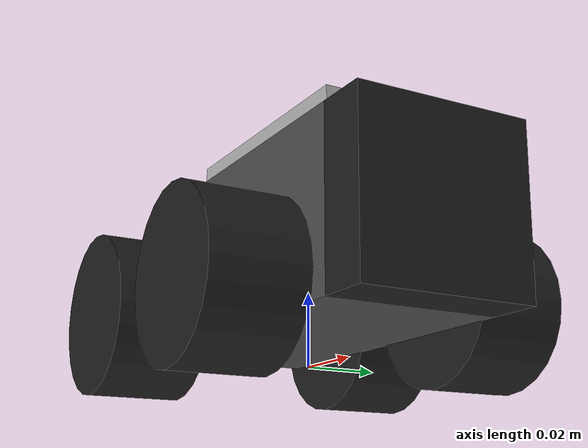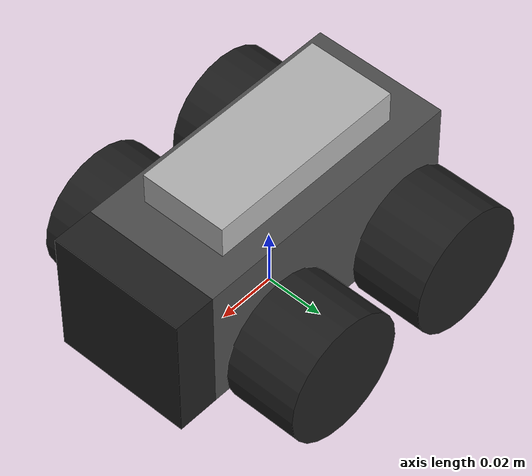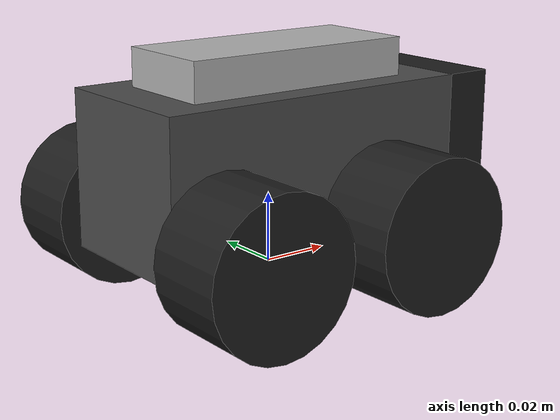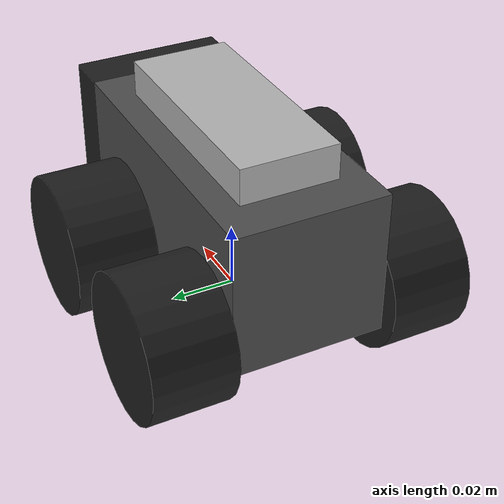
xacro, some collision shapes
<?xml version='1.0'?>

<robot name="scout_robot" xmlns:xacro="http://www.ros.org/wiki/xacro">
  <xacro:include filename="$(find my_robot)/urdf/scout_robot.gazebo" />
  <link name="robot_footprint"></link>

  <joint name="robot_footprint_joint" type="fixed">
    <origin xyz="0 0 0.015" rpy="0 0 0" />
    <parent link="robot_footprint"/>
    <child link="chassis" />
  </joint>

  <!-- WHEEL JOINT MACRO -->
  <xacro:macro
    name="wheel_joint"
    params="wheel_name ox oy">
    <joint type="continuous" name="${wheel_name}_hinge">
      <origin xyz="${ox} ${oy} 0" rpy="0 0 0"/>
      <child link="${wheel_name}"/>
      <parent link="chassis"/>
      <axis xyz="0 1 0" rpy="0 0 0"/>
      <limit effort="1000" velocity="1000"/>
      <dynamics damping="1e-6" friction="1e-3"/>
    </joint>
  </xacro:macro>

  <xacro:wheel_joint wheel_name="front_left_wheel" ox="0.02188" oy="0.0365" />
  <xacro:wheel_joint wheel_name="back_left_wheel" ox="-0.03188" oy="0.0365" />
  <xacro:wheel_joint wheel_name="front_right_wheel" ox="0.02188" oy="-0.0365" />
  <xacro:wheel_joint wheel_name="back_right_wheel" ox="-0.03188" oy="-0.0365" />

  <joint type="fixed" name="camera_joint">
    <origin xyz="0.055 0 0.015" rpy="0 0 0"/>
    <child link="camera"/>
    <parent link="chassis"/>
    <axis xyz="0 1 0" rpy="0 0 0"/>
  </joint>

  <joint type="fixed" name="hokuyo_joint">
    <origin xyz="0.0 0 0.0425" rpy="0 0 0"/>
    <child link="hokuyo"/>
    <parent link="chassis"/>
    <axis xyz="0 1 0" rpy="0 0 0"/>
  </joint>

<!-- CHASSIS MACRO
    where x, y, height, and off_the_ground are in meters
    mass is in kg
   -->
  <xacro:macro
    name="chassis"
    params="name:=chassis x:=0.096 y:=0.047 height=0.045 mass:=0.26 off_the_ground:=0.015">
    <link name='chassis'>
      <inertial>
        <mass value="${mass}"/>
        <origin xyz="0 0 ${off_the_ground}" rpy=" 0 0 0"/>
        <!-- INERTIA FORMULAS: https://en.wikipedia.org/wiki/List_of_moments_of_inertia -->
        <inertia
            ixx="${(1/12)*mass*((height*height)+(y*y))}" ixy="0" ixz="0"
            iyy="${(1/12)*mass*((x*x)+(y*y))}" iyz="0"
            izz="${(1/12)*mass*((x*x)+(height*height))}"
        />
      </inertial>

      <collision name='${name}_collision'>
        <origin xyz="0 0 ${off_the_ground}" rpy=" 0 0 0"/>
        <geometry>
          <box size="${x} ${y} ${height}"/>
        </geometry>
      </collision>

      <visual name='${name}_visual'>
        <origin xyz="0 0 ${off_the_ground}" rpy=" 0 0 0"/>
        <geometry>
          <box size="${x} ${y} ${height}"/>
        </geometry>
      </visual>
    </link>
  </xacro:macro>

  <xacro:chassis />

  <!-- WHEEL MACRO
    where radius and length are in meters
    mass is in kg
   -->
  <xacro:macro
    name="wheel"
    params="name radius:=0.02188 length:=0.025 mass:=0.025">
  <link name="${name}">
      <visual name="${name}_visual">
        <origin xyz="0 0 0" rpy="0 1.57 1.57" />
        <geometry>
          <cylinder length="${length}" radius="${radius}" />
        </geometry>
      </visual>

      <collision name="${name}_collision">
        <origin xyz="0 0 0" rpy="0 1.57 1.57" />
        <geometry>
          <cylinder length="${length}" radius="${radius}" />
        </geometry>
      </collision>

      <!-- INERTIA FORMULAS: https://en.wikipedia.org/wiki/List_of_moments_of_inertia -->
      <!-- This commented out formula is the one wikipedia suggests, but by using the izz, it doesn't look good in gazebo -->
      <inertial>
        <mass value="${mass}"/>
        <origin xyz="0 0 0" rpy="0 1.57 1.57" />
        <inertia
            ixx="${((1/12)*mass)*((3*(radius*radius)) + (length * length))}" ixy="0" ixz="0"
            iyy="${((1/12)*mass)*((3*(radius*radius)) + (length * length))}" iyz="0"
            izz="${((1/12)*mass)*((3*(radius*radius)) + (length * length))}"
        />
      </inertial>
  </link>
  </xacro:macro>

  <xacro:wheel name="front_left_wheel"/>
  <xacro:wheel name="back_left_wheel"/>
  <xacro:wheel name="front_right_wheel"/>
  <xacro:wheel name="back_right_wheel"/>

  <link name="camera">

    <visual name="camera_visual">
      <origin xyz="0 0 0" rpy="0 0 0" />
      <geometry>
        <box size="0.014 0.047 0.045"/>
      </geometry>
    </visual>

    <collision name="camera_collision">
      <origin xyz="0 0 0" rpy="0 0 0" />
      <geometry>
        <box size="0.014 0.047 0.045"/>
      </geometry>
    </collision>

    <inertial>
     <mass value="1e-5"/>
      <origin xyz="0 0 0" rpy="0 0 0" />
      <inertia
          ixx="1e-6" ixy="0" ixz="0"
          iyy="1e-6" iyz="0"
          izz="1e-6"
      />
    </inertial>

  </link>

  <link name="hokuyo">

    <visual name="hokuyo_visual">
      <origin xyz="0 0 0" rpy="0 0 0" />
      <geometry>
        <mesh filename="package://my_robot/meshes/hokuyo.dae" scale="1.00 0.9 0.12" />
      </geometry>
    </visual>

    <collision name="hokuyo_collision">
      <origin xyz="0 0 0" rpy="0 0 0" />
      <geometry>
         <box size="0.07 0.03 0.012"/>
      </geometry>
    </collision>

    <inertial>
     <mass value="1e-5"/>
      <origin xyz="0 0 0" rpy="0 0 0" />
      <inertia
          ixx="1e-6" ixy="0" ixz="0"
          iyy="1e-6" iyz="0"
          izz="1e-6"
      />
    </inertial>
  </link>

  <!-- Coloring-->
  <gazebo reference="chassis">
      <material>Gazebo/DarkGrey</material>
  </gazebo>
  <gazebo reference="front_left_wheel">
      <material>Gazebo/Black</material>
  </gazebo>
  <gazebo reference="back_left_wheel">
      <material>Gazebo/Black</material>
  </gazebo>
  <gazebo reference="front_right_wheel">
      <material>Gazebo/Black</material>
  </gazebo>
  <gazebo reference="back_right_wheel">
      <material>Gazebo/Black</material>
  </gazebo>
  <gazebo reference="camera">
      <material>Gazebo/FlatBlack</material>
  </gazebo>
</robot>
